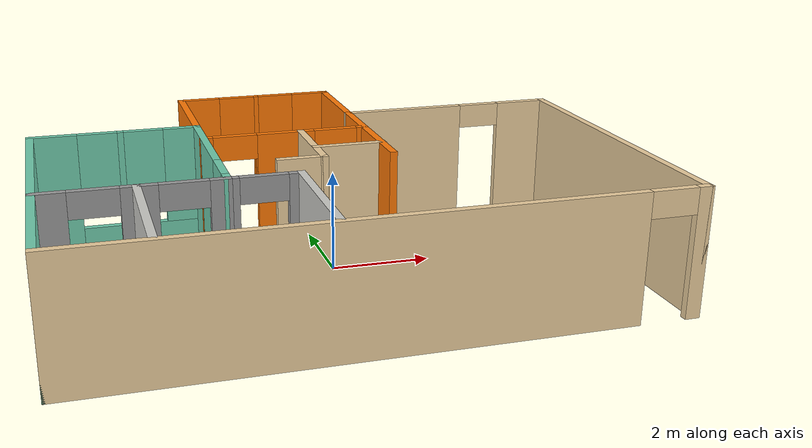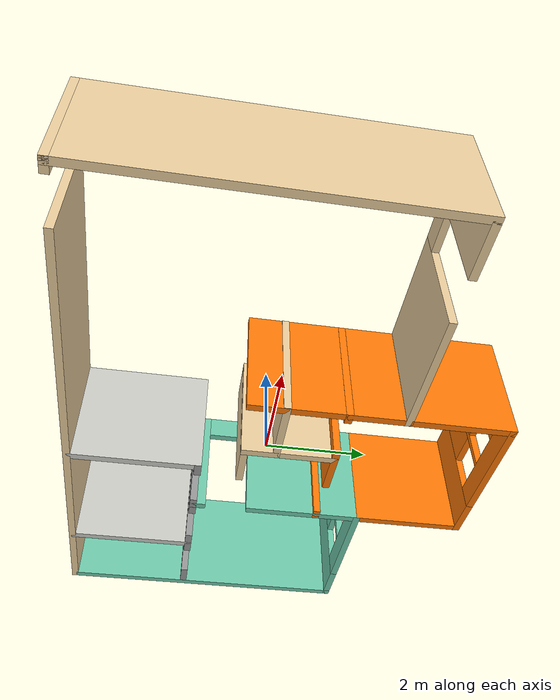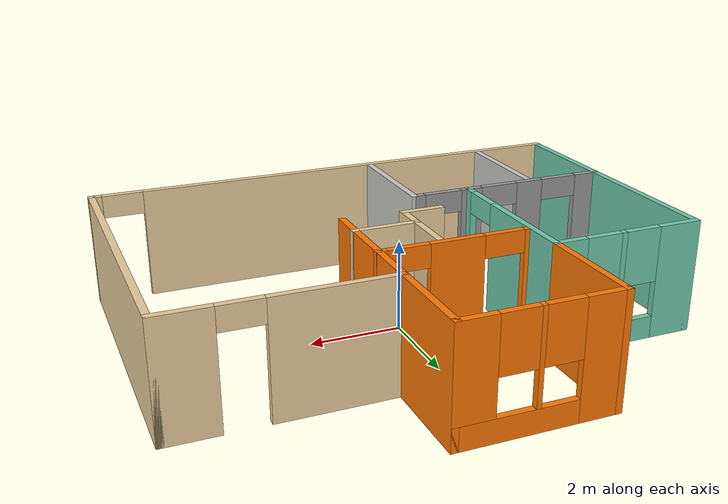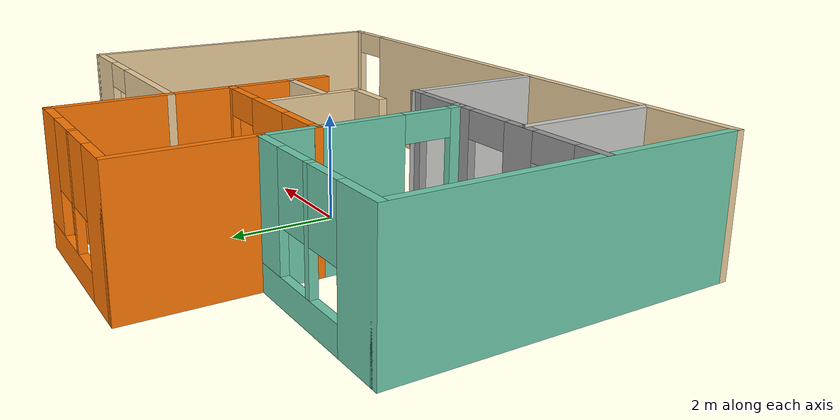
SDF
<?xml version='1.0'?>
<sdf version='1.6'>
  <model name='my_old_apt'>
    <pose frame=''>0.020521 0.394321 0 0 -0 0</pose>
    <link name='Wall_10'>
      <pose frame=''>-3.975 2 0 0 -0 0</pose>
      <visual name='Wall_10_Visual_0'>
        <pose frame=''>-1.25334 0 1.25 0 -0 0</pose>
        <geometry>
          <box>
            <size>0.993317 0.15 2.5</size>
          </box>
        </geometry>
        <material>
          <script>
            <uri>file://media/materials/scripts/gazebo.material</uri>
            <name>Gazebo/Grey</name>
          </script>
          <ambient>0.435294 0.796078 0.67451 1</ambient>
        </material>
        <meta>
          <layer>0</layer>
        </meta>
      </visual>
      <collision name='Wall_10_Collision_0'>
        <geometry>
          <box>
            <size>0.993317 0.15 2.5</size>
          </box>
        </geometry>
        <pose frame=''>-1.25334 0 1.25 0 -0 0</pose>
      </collision>
      <visual name='Wall_10_Visual_1'>
        <pose frame=''>0.496658 0 0.25 0 -0 0</pose>
        <geometry>
          <box>
            <size>2.50668 0.15 0.5</size>
          </box>
        </geometry>
        <material>
          <script>
            <uri>file://media/materials/scripts/gazebo.material</uri>
            <name>Gazebo/Grey</name>
          </script>
          <ambient>0.435294 0.796078 0.67451 1</ambient>
        </material>
        <meta>
          <layer>0</layer>
        </meta>
      </visual>
      <collision name='Wall_10_Collision_1'>
        <geometry>
          <box>
            <size>2.50668 0.15 0.5</size>
          </box>
        </geometry>
        <pose frame=''>0.496658 0 0.25 0 -0 0</pose>
      </collision>
      <visual name='Wall_10_Visual_2'>
        <pose frame=''>0.105929 0 1.5 0 -0 0</pose>
        <geometry>
          <box>
            <size>0.125224 0.15 2</size>
          </box>
        </geometry>
        <material>
          <script>
            <uri>file://media/materials/scripts/gazebo.material</uri>
            <name>Gazebo/Grey</name>
          </script>
          <ambient>0.435294 0.796078 0.67451 1</ambient>
        </material>
        <meta>
          <layer>0</layer>
        </meta>
      </visual>
      <collision name='Wall_10_Collision_2'>
        <geometry>
          <box>
            <size>0.125224 0.15 2</size>
          </box>
        </geometry>
        <pose frame=''>0.105929 0 1.5 0 -0 0</pose>
      </collision>
      <visual name='Wall_10_Visual_3'>
        <pose frame=''>1.35927 0 1.5 0 -0 0</pose>
        <geometry>
          <box>
            <size>0.781459 0.15 2</size>
          </box>
        </geometry>
        <material>
          <script>
            <uri>file://media/materials/scripts/gazebo.material</uri>
            <name>Gazebo/Grey</name>
          </script>
          <ambient>0.435294 0.796078 0.67451 1</ambient>
        </material>
        <meta>
          <layer>0</layer>
        </meta>
      </visual>
      <collision name='Wall_10_Collision_3'>
        <geometry>
          <box>
            <size>0.781459 0.15 2</size>
          </box>
        </geometry>
        <pose frame=''>1.35927 0 1.5 0 -0 0</pose>
      </collision>
      <visual name='Wall_10_Visual_4'>
        <pose frame=''>-0.356683 0 1.9 0 -0 0</pose>
        <geometry>
          <box>
            <size>0.8 0.15 1.2</size>
          </box>
        </geometry>
        <material>
          <script>
            <uri>file://media/materials/scripts/gazebo.material</uri>
            <name>Gazebo/Grey</name>
          </script>
          <ambient>0.435294 0.796078 0.67451 1</ambient>
        </material>
        <meta>
          <layer>0</layer>
        </meta>
      </visual>
      <collision name='Wall_10_Collision_4'>
        <geometry>
          <box>
            <size>0.8 0.15 1.2</size>
          </box>
        </geometry>
        <pose frame=''>-0.356683 0 1.9 0 -0 0</pose>
      </collision>
      <visual name='Wall_10_Visual_5'>
        <pose frame=''>0.568541 0 1.9 0 -0 0</pose>
        <geometry>
          <box>
            <size>0.8 0.15 1.2</size>
          </box>
        </geometry>
        <material>
          <script>
            <uri>file://media/materials/scripts/gazebo.material</uri>
            <name>Gazebo/Grey</name>
          </script>
          <ambient>0.435294 0.796078 0.67451 1</ambient>
        </material>
        <meta>
          <layer>0</layer>
        </meta>
      </visual>
      <collision name='Wall_10_Collision_5'>
        <geometry>
          <box>
            <size>0.8 0.15 1.2</size>
          </box>
        </geometry>
        <pose frame=''>0.568541 0 1.9 0 -0 0</pose>
      </collision>
    </link>
    <link name='Wall_11'>
      <collision name='Wall_11_Collision'>
        <geometry>
          <box>
            <size>2.5 0.15 2.5</size>
          </box>
        </geometry>
        <pose frame=''>0 0 1.25 0 -0 0</pose>
      </collision>
      <visual name='Wall_11_Visual'>
        <pose frame=''>0 0 1.25 0 -0 0</pose>
        <geometry>
          <box>
            <size>2.5 0.15 2.5</size>
          </box>
        </geometry>
        <material>
          <script>
            <uri>file://media/materials/scripts/gazebo.material</uri>
            <name>Gazebo/Grey</name>
          </script>
          <ambient>0.996078 0.47451 0.0196078 1</ambient>
        </material>
        <meta>
          <layer>0</layer>
        </meta>
      </visual>
      <pose frame=''>-2.3 3.175 0 0 -0 1.5708</pose>
    </link>
    <link name='Wall_12'>
      <pose frame=''>-0.625 4.35 0 0 -0 0</pose>
      <visual name='Wall_12_Visual_0'>
        <pose frame=''>-1.28321 0 1.25 0 -0 0</pose>
        <geometry>
          <box>
            <size>0.933586 0.15 2.5</size>
          </box>
        </geometry>
        <material>
          <script>
            <uri>file://media/materials/scripts/gazebo.material</uri>
            <name>Gazebo/Grey</name>
          </script>
          <ambient>0.996078 0.47451 0.0196078 1</ambient>
        </material>
        <meta>
          <layer>0</layer>
        </meta>
      </visual>
      <collision name='Wall_12_Collision_0'>
        <geometry>
          <box>
            <size>0.933586 0.15 2.5</size>
          </box>
        </geometry>
        <pose frame=''>-1.28321 0 1.25 0 -0 0</pose>
      </collision>
      <visual name='Wall_12_Visual_1'>
        <pose frame=''>0.466793 0 0.25 0 -0 0</pose>
        <geometry>
          <box>
            <size>2.56641 0.15 0.5</size>
          </box>
        </geometry>
        <material>
          <script>
            <uri>file://media/materials/scripts/gazebo.material</uri>
            <name>Gazebo/Grey</name>
          </script>
          <ambient>0.996078 0.47451 0.0196078 1</ambient>
        </material>
        <meta>
          <layer>0</layer>
        </meta>
      </visual>
      <collision name='Wall_12_Collision_1'>
        <geometry>
          <box>
            <size>2.56641 0.15 0.5</size>
          </box>
        </geometry>
        <pose frame=''>0.466793 0 0.25 0 -0 0</pose>
      </collision>
      <visual name='Wall_12_Visual_2'>
        <pose frame=''>0.034792 0 1.5 0 -0 0</pose>
        <geometry>
          <box>
            <size>0.102412 0.15 2</size>
          </box>
        </geometry>
        <material>
          <script>
            <uri>file://media/materials/scripts/gazebo.material</uri>
            <name>Gazebo/Grey</name>
          </script>
          <ambient>0.996078 0.47451 0.0196078 1</ambient>
        </material>
        <meta>
          <layer>0</layer>
        </meta>
      </visual>
      <collision name='Wall_12_Collision_2'>
        <geometry>
          <box>
            <size>0.102412 0.15 2</size>
          </box>
        </geometry>
        <pose frame=''>0.034792 0 1.5 0 -0 0</pose>
      </collision>
      <visual name='Wall_12_Visual_3'>
        <pose frame=''>1.318 0 1.5 0 -0 0</pose>
        <geometry>
          <box>
            <size>0.864002 0.15 2</size>
          </box>
        </geometry>
        <material>
          <script>
            <uri>file://media/materials/scripts/gazebo.material</uri>
            <name>Gazebo/Grey</name>
          </script>
          <ambient>0.996078 0.47451 0.0196078 1</ambient>
        </material>
        <meta>
          <layer>0</layer>
        </meta>
      </visual>
      <collision name='Wall_12_Collision_3'>
        <geometry>
          <box>
            <size>0.864002 0.15 2</size>
          </box>
        </geometry>
        <pose frame=''>1.318 0 1.5 0 -0 0</pose>
      </collision>
      <visual name='Wall_12_Visual_4'>
        <pose frame=''>-0.416414 0 1.9 0 -0 0</pose>
        <geometry>
          <box>
            <size>0.8 0.15 1.2</size>
          </box>
        </geometry>
        <material>
          <script>
            <uri>file://media/materials/scripts/gazebo.material</uri>
            <name>Gazebo/Grey</name>
          </script>
          <ambient>0.996078 0.47451 0.0196078 1</ambient>
        </material>
        <meta>
          <layer>0</layer>
        </meta>
      </visual>
      <collision name='Wall_12_Collision_4'>
        <geometry>
          <box>
            <size>0.8 0.15 1.2</size>
          </box>
        </geometry>
        <pose frame=''>-0.416414 0 1.9 0 -0 0</pose>
      </collision>
      <visual name='Wall_12_Visual_5'>
        <pose frame=''>0.485998 0 1.9 0 -0 0</pose>
        <geometry>
          <box>
            <size>0.8 0.15 1.2</size>
          </box>
        </geometry>
        <material>
          <script>
            <uri>file://media/materials/scripts/gazebo.material</uri>
            <name>Gazebo/Grey</name>
          </script>
          <ambient>0.996078 0.47451 0.0196078 1</ambient>
        </material>
        <meta>
          <layer>0</layer>
        </meta>
      </visual>
      <collision name='Wall_12_Collision_5'>
        <geometry>
          <box>
            <size>0.8 0.15 1.2</size>
          </box>
        </geometry>
        <pose frame=''>0.485998 0 1.9 0 -0 0</pose>
      </collision>
    </link>
    <link name='Wall_13'>
      <collision name='Wall_13_Collision'>
        <geometry>
          <box>
            <size>2.25 0.15 2.5</size>
          </box>
        </geometry>
        <pose frame=''>0 0 1.25 0 -0 0</pose>
      </collision>
      <visual name='Wall_13_Visual'>
        <pose frame=''>0 0 1.25 0 -0 0</pose>
        <geometry>
          <box>
            <size>2.25 0.15 2.5</size>
          </box>
        </geometry>
        <material>
          <script>
            <uri>file://media/materials/scripts/gazebo.material</uri>
            <name>Gazebo/Grey</name>
          </script>
          <ambient>0.996078 0.47451 0.0196078 1</ambient>
        </material>
        <meta>
          <layer>0</layer>
        </meta>
      </visual>
      <pose frame=''>1.05 3.3 0 0 0 -1.5708</pose>
    </link>
    <link name='Wall_14'>
      <pose frame=''>3.35 2.25 0 0 -0 0</pose>
      <visual name='Wall_14_Visual_0'>
        <pose frame=''>-1.04628 0 1.25 0 -0 0</pose>
        <geometry>
          <box>
            <size>2.65745 0.15 2.5</size>
          </box>
        </geometry>
        <material>
          <script>
            <uri>file://media/materials/scripts/gazebo.material</uri>
            <name>Gazebo/Grey</name>
          </script>
          <ambient>0.921569 0.807843 0.615686 1</ambient>
        </material>
        <meta>
          <layer>0</layer>
        </meta>
      </visual>
      <collision name='Wall_14_Collision_0'>
        <geometry>
          <box>
            <size>2.65745 0.15 2.5</size>
          </box>
        </geometry>
        <pose frame=''>-1.04628 0 1.25 0 -0 0</pose>
      </collision>
      <visual name='Wall_14_Visual_1'>
        <pose frame=''>1.77872 0 1.25 0 -0 0</pose>
        <geometry>
          <box>
            <size>1.19255 0.15 2.5</size>
          </box>
        </geometry>
        <material>
          <script>
            <uri>file://media/materials/scripts/gazebo.material</uri>
            <name>Gazebo/Grey</name>
          </script>
          <ambient>0.921569 0.807843 0.615686 1</ambient>
        </material>
        <meta>
          <layer>0</layer>
        </meta>
      </visual>
      <collision name='Wall_14_Collision_1'>
        <geometry>
          <box>
            <size>1.19255 0.15 2.5</size>
          </box>
        </geometry>
        <pose frame=''>1.77872 0 1.25 0 -0 0</pose>
      </collision>
      <visual name='Wall_14_Visual_2'>
        <pose frame=''>0.73245 0 2.25 0 -0 0</pose>
        <geometry>
          <box>
            <size>0.9 0.15 0.5</size>
          </box>
        </geometry>
        <material>
          <script>
            <uri>file://media/materials/scripts/gazebo.material</uri>
            <name>Gazebo/Grey</name>
          </script>
          <ambient>0.921569 0.807843 0.615686 1</ambient>
        </material>
        <meta>
          <layer>0</layer>
        </meta>
      </visual>
      <collision name='Wall_14_Collision_2'>
        <geometry>
          <box>
            <size>0.9 0.15 0.5</size>
          </box>
        </geometry>
        <pose frame=''>0.73245 0 2.25 0 -0 0</pose>
      </collision>
    </link>
    <link name='Wall_15'>
      <collision name='Wall_15_Collision'>
        <geometry>
          <box>
            <size>6.75 0.15 2.5</size>
          </box>
        </geometry>
        <pose frame=''>0 0 1.25 0 -0 0</pose>
      </collision>
      <visual name='Wall_15_Visual'>
        <pose frame=''>0 0 1.25 0 -0 0</pose>
        <geometry>
          <box>
            <size>6.75 0.15 2.5</size>
          </box>
        </geometry>
        <material>
          <script>
            <uri>file://media/materials/scripts/gazebo.material</uri>
            <name>Gazebo/Grey</name>
          </script>
          <ambient>0.921569 0.807843 0.615686 1</ambient>
        </material>
        <meta>
          <layer>0</layer>
        </meta>
      </visual>
      <pose frame=''>5.65 -1.05 0 0 0 -1.5708</pose>
    </link>
    <link name='Wall_18'>
      <pose frame=''>0 -4.35 0 0 -0 0</pose>
      <visual name='Wall_18_Visual_0'>
        <pose frame=''>-0.595069 0 1.25 0 -0 0</pose>
        <geometry>
          <box>
            <size>10.2599 0.15 2.5</size>
          </box>
        </geometry>
        <material>
          <script>
            <uri>file://media/materials/scripts/gazebo.material</uri>
            <name>Gazebo/Grey</name>
          </script>
          <ambient>0.921569 0.807843 0.615686 1</ambient>
        </material>
        <meta>
          <layer>0</layer>
        </meta>
      </visual>
      <collision name='Wall_18_Collision_0'>
        <geometry>
          <box>
            <size>10.2599 0.15 2.5</size>
          </box>
        </geometry>
        <pose frame=''>-0.595069 0 1.25 0 -0 0</pose>
      </collision>
      <visual name='Wall_18_Visual_1'>
        <pose frame=''>5.57993 0 1.25 0 -0 0</pose>
        <geometry>
          <box>
            <size>0.290139 0.15 2.5</size>
          </box>
        </geometry>
        <material>
          <script>
            <uri>file://media/materials/scripts/gazebo.material</uri>
            <name>Gazebo/Grey</name>
          </script>
          <ambient>0.921569 0.807843 0.615686 1</ambient>
        </material>
        <meta>
          <layer>0</layer>
        </meta>
      </visual>
      <collision name='Wall_18_Collision_1'>
        <geometry>
          <box>
            <size>0.290139 0.15 2.5</size>
          </box>
        </geometry>
        <pose frame=''>5.57993 0 1.25 0 -0 0</pose>
      </collision>
      <visual name='Wall_18_Visual_2'>
        <pose frame=''>4.98486 0 2.25 0 -0 0</pose>
        <geometry>
          <box>
            <size>0.9 0.15 0.5</size>
          </box>
        </geometry>
        <material>
          <script>
            <uri>file://media/materials/scripts/gazebo.material</uri>
            <name>Gazebo/Grey</name>
          </script>
          <ambient>0.921569 0.807843 0.615686 1</ambient>
        </material>
        <meta>
          <layer>0</layer>
        </meta>
      </visual>
      <collision name='Wall_18_Collision_2'>
        <geometry>
          <box>
            <size>0.9 0.15 0.5</size>
          </box>
        </geometry>
        <pose frame=''>4.98486 0 2.25 0 -0 0</pose>
      </collision>
    </link>
    <link name='Wall_20'>
      <pose frame=''>-3.96576 -1.68179 0 0 -0 0</pose>
      <visual name='Wall_20_Visual_0'>
        <pose frame=''>-1.42735 0 1.25 0 -0 0</pose>
        <geometry>
          <box>
            <size>0.645291 0.15 2.5</size>
          </box>
        </geometry>
        <material>
          <script>
            <uri>file://media/materials/scripts/gazebo.material</uri>
            <name>Gazebo/Grey</name>
          </script>
          <ambient>1 1 1 1</ambient>
        </material>
        <meta>
          <layer>0</layer>
        </meta>
      </visual>
      <collision name='Wall_20_Collision_0'>
        <geometry>
          <box>
            <size>0.645291 0.15 2.5</size>
          </box>
        </geometry>
        <pose frame=''>-1.42735 0 1.25 0 -0 0</pose>
      </collision>
      <visual name='Wall_20_Visual_1'>
        <pose frame=''>0.125342 0 1.25 0 -0 0</pose>
        <geometry>
          <box>
            <size>0.660102 0.15 2.5</size>
          </box>
        </geometry>
        <material>
          <script>
            <uri>file://media/materials/scripts/gazebo.material</uri>
            <name>Gazebo/Grey</name>
          </script>
          <ambient>1 1 1 1</ambient>
        </material>
        <meta>
          <layer>0</layer>
        </meta>
      </visual>
      <collision name='Wall_20_Collision_1'>
        <geometry>
          <box>
            <size>0.660102 0.15 2.5</size>
          </box>
        </geometry>
        <pose frame=''>0.125342 0 1.25 0 -0 0</pose>
      </collision>
      <visual name='Wall_20_Visual_2'>
        <pose frame=''>1.5527 0 1.25 0 -0 0</pose>
        <geometry>
          <box>
            <size>0.394608 0.15 2.5</size>
          </box>
        </geometry>
        <material>
          <script>
            <uri>file://media/materials/scripts/gazebo.material</uri>
            <name>Gazebo/Grey</name>
          </script>
          <ambient>1 1 1 1</ambient>
        </material>
        <meta>
          <layer>0</layer>
        </meta>
      </visual>
      <collision name='Wall_20_Collision_2'>
        <geometry>
          <box>
            <size>0.394608 0.15 2.5</size>
          </box>
        </geometry>
        <pose frame=''>1.5527 0 1.25 0 -0 0</pose>
      </collision>
      <visual name='Wall_20_Visual_3'>
        <pose frame=''>-0.654709 0 2.25 0 -0 0</pose>
        <geometry>
          <box>
            <size>0.9 0.15 0.5</size>
          </box>
        </geometry>
        <material>
          <script>
            <uri>file://media/materials/scripts/gazebo.material</uri>
            <name>Gazebo/Grey</name>
          </script>
          <ambient>1 1 1 1</ambient>
        </material>
        <meta>
          <layer>0</layer>
        </meta>
      </visual>
      <collision name='Wall_20_Collision_3'>
        <geometry>
          <box>
            <size>0.9 0.15 0.5</size>
          </box>
        </geometry>
        <pose frame=''>-0.654709 0 2.25 0 -0 0</pose>
      </collision>
      <visual name='Wall_20_Visual_4'>
        <pose frame=''>0.905392 0 2.25 0 -0 0</pose>
        <geometry>
          <box>
            <size>0.9 0.15 0.5</size>
          </box>
        </geometry>
        <material>
          <script>
            <uri>file://media/materials/scripts/gazebo.material</uri>
            <name>Gazebo/Grey</name>
          </script>
          <ambient>1 1 1 1</ambient>
        </material>
        <meta>
          <layer>0</layer>
        </meta>
      </visual>
      <collision name='Wall_20_Collision_4'>
        <geometry>
          <box>
            <size>0.9 0.15 0.5</size>
          </box>
        </geometry>
        <pose frame=''>0.905392 0 2.25 0 -0 0</pose>
      </collision>
    </link>
    <link name='Wall_21'>
      <pose frame=''>-2.29538 0.159105 0 0 -0 1.57331</pose>
      <visual name='Wall_21_Visual_0'>
        <pose frame=''>-1.74316 0 1.25 0 -0 0</pose>
        <geometry>
          <box>
            <size>0.345478 0.15 2.5</size>
          </box>
        </geometry>
        <material>
          <script>
            <uri>file://media/materials/scripts/gazebo.material</uri>
            <name>Gazebo/Grey</name>
          </script>
          <ambient>0.435294 0.796078 0.67451 1</ambient>
        </material>
        <meta>
          <layer>0</layer>
        </meta>
      </visual>
      <collision name='Wall_21_Collision_0'>
        <geometry>
          <box>
            <size>0.345478 0.15 2.5</size>
          </box>
        </geometry>
        <pose frame=''>-1.74316 0 1.25 0 -0 0</pose>
      </collision>
      <visual name='Wall_21_Visual_1'>
        <pose frame=''>0.622739 0 1.25 0 -0 0</pose>
        <geometry>
          <box>
            <size>2.58632 0.15 2.5</size>
          </box>
        </geometry>
        <material>
          <script>
            <uri>file://media/materials/scripts/gazebo.material</uri>
            <name>Gazebo/Grey</name>
          </script>
          <ambient>0.435294 0.796078 0.67451 1</ambient>
        </material>
        <meta>
          <layer>0</layer>
        </meta>
      </visual>
      <collision name='Wall_21_Collision_1'>
        <geometry>
          <box>
            <size>2.58632 0.15 2.5</size>
          </box>
        </geometry>
        <pose frame=''>0.622739 0 1.25 0 -0 0</pose>
      </collision>
      <visual name='Wall_21_Visual_2'>
        <pose frame=''>-1.12042 0 2.25 0 -0 0</pose>
        <geometry>
          <box>
            <size>0.9 0.15 0.5</size>
          </box>
        </geometry>
        <material>
          <script>
            <uri>file://media/materials/scripts/gazebo.material</uri>
            <name>Gazebo/Grey</name>
          </script>
          <ambient>0.435294 0.796078 0.67451 1</ambient>
        </material>
        <meta>
          <layer>0</layer>
        </meta>
      </visual>
      <collision name='Wall_21_Collision_2'>
        <geometry>
          <box>
            <size>0.9 0.15 0.5</size>
          </box>
        </geometry>
        <pose frame=''>-1.12042 0 2.25 0 -0 0</pose>
      </collision>
    </link>
    <link name='Wall_25'>
      <collision name='Wall_25_Collision'>
        <geometry>
          <box>
            <size>3.25 0.15 2.5</size>
          </box>
        </geometry>
        <pose frame=''>0 0 1.25 0 -0 0</pose>
      </collision>
      <visual name='Wall_25_Visual'>
        <pose frame=''>0 0 1.25 0 -0 0</pose>
        <geometry>
          <box>
            <size>3.25 0.15 2.5</size>
          </box>
        </geometry>
        <material>
          <script>
            <uri>file://media/materials/scripts/gazebo.material</uri>
            <name>Gazebo/Grey</name>
          </script>
          <ambient>0.996078 0.47451 0.0196078 1</ambient>
        </material>
        <meta>
          <layer>0</layer>
        </meta>
      </visual>
      <pose frame=''>1.05 0.7 0 0 0 -1.5708</pose>
    </link>
    <link name='Wall_28'>
      <pose frame=''>-0.624076 1.06727 0 0 -0 0</pose>
      <visual name='Wall_28_Visual_0'>
        <pose frame=''>-1.62222 0 1.25 0 -0 0</pose>
        <geometry>
          <box>
            <size>0.255563 0.15 2.5</size>
          </box>
        </geometry>
        <material>
          <script>
            <uri>file://media/materials/scripts/gazebo.material</uri>
            <name>Gazebo/Grey</name>
          </script>
          <ambient>0.996078 0.47451 0.0196078 1</ambient>
        </material>
        <meta>
          <layer>0</layer>
        </meta>
      </visual>
      <collision name='Wall_28_Collision_0'>
        <geometry>
          <box>
            <size>0.255563 0.15 2.5</size>
          </box>
        </geometry>
        <pose frame=''>-1.62222 0 1.25 0 -0 0</pose>
      </collision>
      <visual name='Wall_28_Visual_1'>
        <pose frame=''>0.003278 0 1.25 0 -0 0</pose>
        <geometry>
          <box>
            <size>1.19543 0.15 2.5</size>
          </box>
        </geometry>
        <material>
          <script>
            <uri>file://media/materials/scripts/gazebo.material</uri>
            <name>Gazebo/Grey</name>
          </script>
          <ambient>0.996078 0.47451 0.0196078 1</ambient>
        </material>
        <meta>
          <layer>0</layer>
        </meta>
      </visual>
      <collision name='Wall_28_Collision_1'>
        <geometry>
          <box>
            <size>1.19543 0.15 2.5</size>
          </box>
        </geometry>
        <pose frame=''>0.003278 0 1.25 0 -0 0</pose>
      </collision>
      <visual name='Wall_28_Visual_2'>
        <pose frame=''>1.6255 0 1.25 0 -0 0</pose>
        <geometry>
          <box>
            <size>0.249007 0.15 2.5</size>
          </box>
        </geometry>
        <material>
          <script>
            <uri>file://media/materials/scripts/gazebo.material</uri>
            <name>Gazebo/Grey</name>
          </script>
          <ambient>0.996078 0.47451 0.0196078 1</ambient>
        </material>
        <meta>
          <layer>0</layer>
        </meta>
      </visual>
      <collision name='Wall_28_Collision_2'>
        <geometry>
          <box>
            <size>0.249007 0.15 2.5</size>
          </box>
        </geometry>
        <pose frame=''>1.6255 0 1.25 0 -0 0</pose>
      </collision>
      <visual name='Wall_28_Visual_3'>
        <pose frame=''>-1.04444 0 2.25 0 -0 0</pose>
        <geometry>
          <box>
            <size>0.9 0.15 0.5</size>
          </box>
        </geometry>
        <material>
          <script>
            <uri>file://media/materials/scripts/gazebo.material</uri>
            <name>Gazebo/Grey</name>
          </script>
          <ambient>0.996078 0.47451 0.0196078 1</ambient>
        </material>
        <meta>
          <layer>0</layer>
        </meta>
      </visual>
      <collision name='Wall_28_Collision_3'>
        <geometry>
          <box>
            <size>0.9 0.15 0.5</size>
          </box>
        </geometry>
        <pose frame=''>-1.04444 0 2.25 0 -0 0</pose>
      </collision>
      <visual name='Wall_28_Visual_4'>
        <pose frame=''>1.05099 0 2.25 0 -0 0</pose>
        <geometry>
          <box>
            <size>0.9 0.15 0.5</size>
          </box>
        </geometry>
        <material>
          <script>
            <uri>file://media/materials/scripts/gazebo.material</uri>
            <name>Gazebo/Grey</name>
          </script>
          <ambient>0.996078 0.47451 0.0196078 1</ambient>
        </material>
        <meta>
          <layer>0</layer>
        </meta>
      </visual>
      <collision name='Wall_28_Collision_4'>
        <geometry>
          <box>
            <size>0.9 0.15 0.5</size>
          </box>
        </geometry>
        <pose frame=''>1.05099 0 2.25 0 -0 0</pose>
      </collision>
    </link>
    <link name='Wall_30'>
      <collision name='Wall_30_Collision'>
        <geometry>
          <box>
            <size>2.75 0.15 2.5</size>
          </box>
        </geometry>
        <pose frame=''>0 0 1.25 0 -0 0</pose>
      </collision>
      <visual name='Wall_30_Visual'>
        <pose frame=''>0 0 1.25 0 -0 0</pose>
        <geometry>
          <box>
            <size>2.75 0.15 2.5</size>
          </box>
        </geometry>
        <material>
          <script>
            <uri>file://media/materials/scripts/gazebo.material</uri>
            <name>Gazebo/CeilingTiled</name>
          </script>
          <ambient>1 1 1 1</ambient>
        </material>
        <meta>
          <layer>0</layer>
        </meta>
      </visual>
      <pose frame=''>-3.88421 -3.00259 0 0 0 -1.5708</pose>
    </link>
    <link name='Wall_32'>
      <pose frame=''>-1.61576 -1.68179 0 0 -0 0</pose>
      <visual name='Wall_32_Visual_0'>
        <pose frame=''>-0.611081 0 1.25 0 -0 0</pose>
        <geometry>
          <box>
            <size>0.277838 0.15 2.5</size>
          </box>
        </geometry>
        <material>
          <script>
            <uri>file://media/materials/scripts/gazebo.material</uri>
            <name>Gazebo/Grey</name>
          </script>
          <ambient>1 1 1 1</ambient>
        </material>
        <meta>
          <layer>0</layer>
        </meta>
      </visual>
      <collision name='Wall_32_Collision_0'>
        <geometry>
          <box>
            <size>0.277838 0.15 2.5</size>
          </box>
        </geometry>
        <pose frame=''>-0.611081 0 1.25 0 -0 0</pose>
      </collision>
      <visual name='Wall_32_Visual_1'>
        <pose frame=''>0.588919 0 1.25 0 -0 0</pose>
        <geometry>
          <box>
            <size>0.322162 0.15 2.5</size>
          </box>
        </geometry>
        <material>
          <script>
            <uri>file://media/materials/scripts/gazebo.material</uri>
            <name>Gazebo/Grey</name>
          </script>
          <ambient>1 1 1 1</ambient>
        </material>
        <meta>
          <layer>0</layer>
        </meta>
      </visual>
      <collision name='Wall_32_Collision_1'>
        <geometry>
          <box>
            <size>0.322162 0.15 2.5</size>
          </box>
        </geometry>
        <pose frame=''>0.588919 0 1.25 0 -0 0</pose>
      </collision>
      <visual name='Wall_32_Visual_2'>
        <pose frame=''>-0.022162 0 2.25 0 -0 0</pose>
        <geometry>
          <box>
            <size>0.9 0.15 0.5</size>
          </box>
        </geometry>
        <material>
          <script>
            <uri>file://media/materials/scripts/gazebo.material</uri>
            <name>Gazebo/Grey</name>
          </script>
          <ambient>1 1 1 1</ambient>
        </material>
        <meta>
          <layer>0</layer>
        </meta>
      </visual>
      <collision name='Wall_32_Collision_2'>
        <geometry>
          <box>
            <size>0.9 0.15 0.5</size>
          </box>
        </geometry>
        <pose frame=''>-0.022162 0 2.25 0 -0 0</pose>
      </collision>
    </link>
    <link name='Wall_33'>
      <collision name='Wall_33_Collision'>
        <geometry>
          <box>
            <size>2.75 0.15 2.5</size>
          </box>
        </geometry>
        <pose frame=''>0 0 1.25 0 -0 0</pose>
      </collision>
      <visual name='Wall_33_Visual'>
        <pose frame=''>0 0 1.25 0 -0 0</pose>
        <geometry>
          <box>
            <size>2.75 0.15 2.5</size>
          </box>
        </geometry>
        <material>
          <script>
            <uri>file://media/materials/scripts/gazebo.material</uri>
            <name>Gazebo/CeilingTiled</name>
          </script>
          <ambient>0.921569 0.807843 0.615686 1</ambient>
        </material>
        <meta>
          <layer>0</layer>
        </meta>
      </visual>
      <pose frame=''>-0.940761 -2.98179 0 0 0 -1.5708</pose>
    </link>
    <link name='Wall_36'>
      <collision name='Wall_36_Collision'>
        <geometry>
          <box>
            <size>1 0.15 2.5</size>
          </box>
        </geometry>
        <pose frame=''>0 0 1.25 0 -0 0</pose>
      </collision>
      <visual name='Wall_36_Visual'>
        <pose frame=''>0 0 1.25 0 -0 0</pose>
        <geometry>
          <box>
            <size>1 0.15 2.5</size>
          </box>
        </geometry>
        <material>
          <script>
            <uri>file://media/materials/scripts/gazebo.material</uri>
            <name>Gazebo/Grey</name>
          </script>
          <ambient>0.921569 0.807843 0.615686 1</ambient>
        </material>
        <meta>
          <layer>0</layer>
        </meta>
      </visual>
      <pose frame=''>-0.72221 -0.792592 0 0 -0 0</pose>
    </link>
    <link name='Wall_37'>
      <collision name='Wall_37_Collision'>
        <geometry>
          <box>
            <size>2 0.15 2.5</size>
          </box>
        </geometry>
        <pose frame=''>0 0 1.25 0 -0 0</pose>
      </collision>
      <visual name='Wall_37_Visual'>
        <pose frame=''>0 0 1.25 0 -0 0</pose>
        <geometry>
          <box>
            <size>2 0.15 2.5</size>
          </box>
        </geometry>
        <material>
          <script>
            <uri>file://media/materials/scripts/gazebo.material</uri>
            <name>Gazebo/Grey</name>
          </script>
          <ambient>0.921569 0.807843 0.615686 1</ambient>
        </material>
        <meta>
          <layer>0</layer>
        </meta>
      </visual>
      <pose frame=''>-0.29721 0.132408 0 0 -0 1.5708</pose>
    </link>
    <link name='Wall_41'>
      <collision name='Wall_41_Collision'>
        <geometry>
          <box>
            <size>1.5 0.15 2.5</size>
          </box>
        </geometry>
        <pose frame=''>0 0 1.25 0 -0 0</pose>
      </collision>
      <visual name='Wall_41_Visual'>
        <pose frame=''>0 0 1.25 0 -0 0</pose>
        <geometry>
          <box>
            <size>1.5 0.15 2.5</size>
          </box>
        </geometry>
        <material>
          <script>
            <uri>file://media/materials/scripts/gazebo.material</uri>
            <name>Gazebo/Grey</name>
          </script>
          <ambient>0.921569 0.807843 0.615686 1</ambient>
        </material>
        <meta>
          <layer>0</layer>
        </meta>
      </visual>
      <pose frame=''>0.387357 -0.145149 0 0 -0 3.14159</pose>
    </link>
    <link name='Wall_9'>
      <collision name='Wall_9_Collision'>
        <geometry>
          <box>
            <size>6.5 0.15 2.5</size>
          </box>
        </geometry>
        <pose frame=''>0 0 1.25 0 -0 0</pose>
      </collision>
      <visual name='Wall_9_Visual'>
        <pose frame=''>0 0 1.25 0 -0 0</pose>
        <geometry>
          <box>
            <size>6.5 0.15 2.5</size>
          </box>
        </geometry>
        <material>
          <script>
            <uri>file://media/materials/scripts/gazebo.material</uri>
            <name>Gazebo/Grey</name>
          </script>
          <ambient>0.435294 0.796078 0.67451 1</ambient>
        </material>
        <meta>
          <layer>0</layer>
        </meta>
      </visual>
      <pose frame=''>-5.65 -1.175 0 0 -0 1.5708</pose>
    </link>
    <static>1</static>
  </model>
</sdf>
